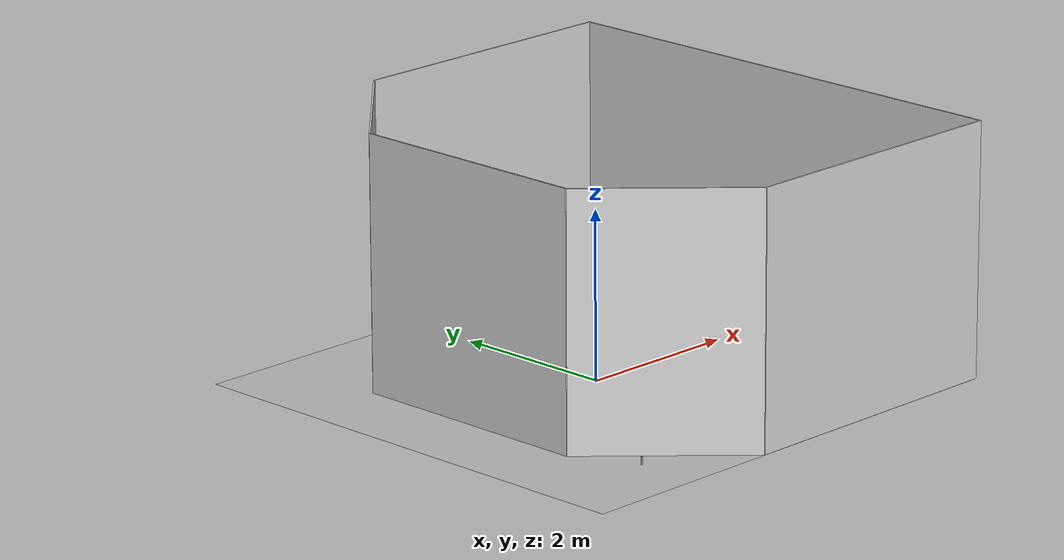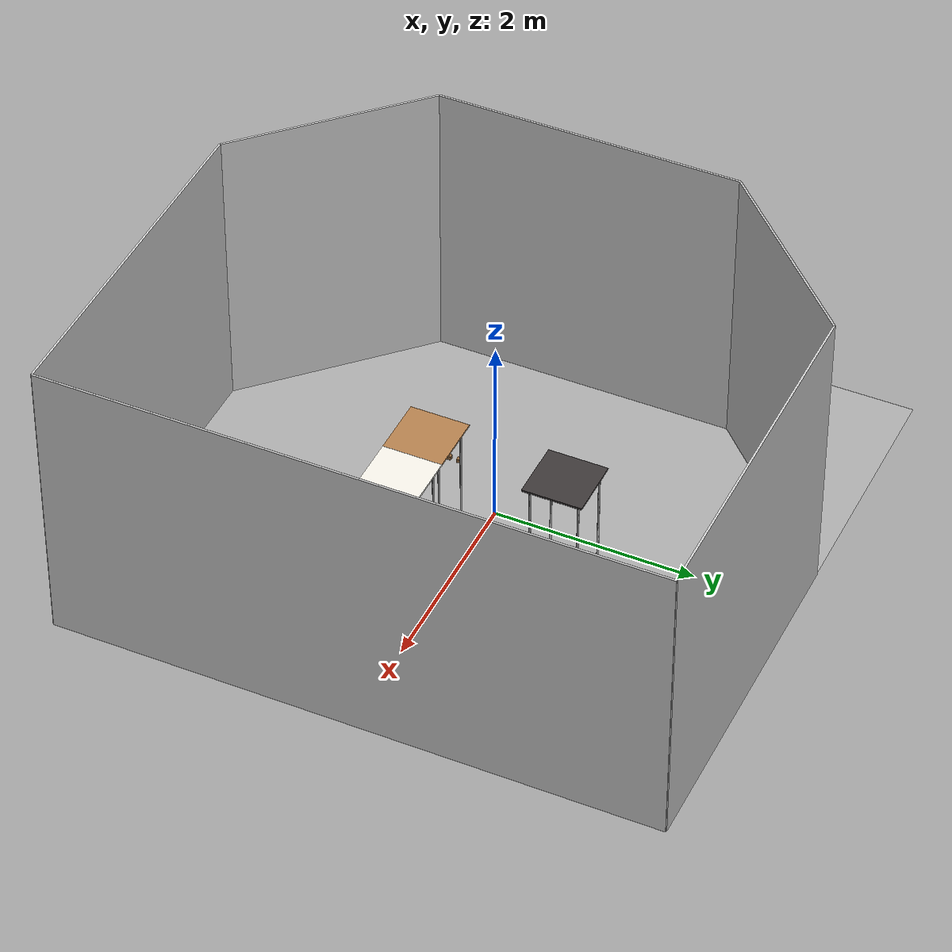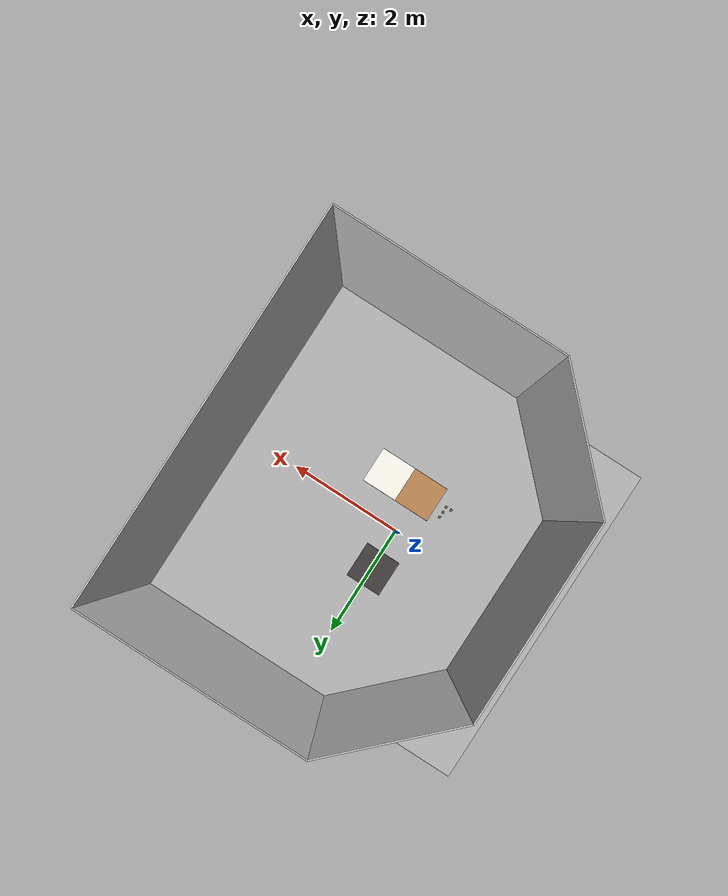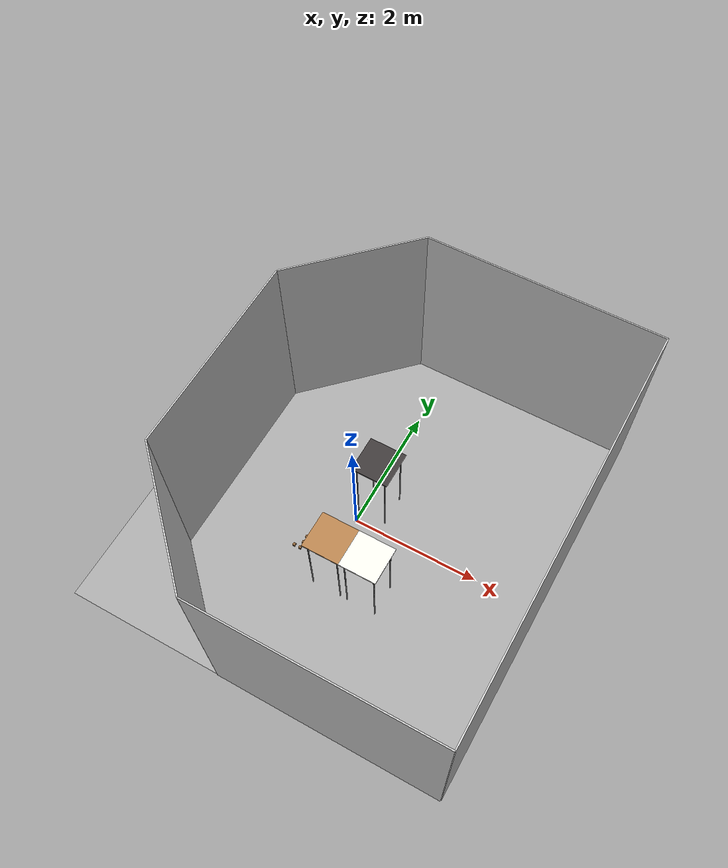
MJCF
<mujoco model="empty_arena">
  <!-- Asset definitions: Textures and materials used in the simulation -->
  <compiler angle="radian"/>

  <visual>
    <global offwidth="1280" offheight="720"/>
  </visual>

  <asset>
    <texture type="skybox" builtin="gradient" rgb1="0.9 0.9 1" rgb2="0.2 0.3 0.4" width="256" height="1536"/>
    <texture type="2d" name="texplane" file="textures/light-gray-floor-tile.png"/>
    <texture type="2d" name="tex-light-gray-plaster" file="textures/light-gray-plaster.png"/>
    <texture type="2d" name="tex-light-wood" file="textures/light-wood.png"/>
    <texture type="2d" name="wood" file="wood.png"/>
    <material name="floorplane" texture="texplane" texuniform="true" texrepeat="2 2" specular="0" shininess="0" reflectance="0.01"/>
    <material name="walls_mat" texture="tex-light-gray-plaster" texuniform="true" texrepeat="3 3" specular="0.1" shininess="0.1"/>
    <material name="light-wood" texture="tex-light-wood" texuniform="true" texrepeat="15 15" reflectance="0.7"/>
    <material name="wood_material" texture="wood" texuniform="true" texrepeat="50 50" rgba="0.8 0.8 0.8 1"/>
  </asset>

  <worldbody>
    <geom name="floor" size="3 3 0.125" type="plane" group="1" material="floorplane"/>
    <geom name="wall_leftcorner_visual" size="1.06 1.5 0.01" pos="-1.25 2.25 1.5" quat="0.653281 0.653281 0.270598 0.270598" type="box" contype="0" conaffinity="0" group="1" material="walls_mat"/>
    <geom name="wall_rightcorner_visual" size="1.06 1.5 0.01" pos="-1.25 -2.25 1.5" quat="0.653281 0.653281 -0.270598 -0.270598" type="box" contype="0" conaffinity="0" group="1" material="walls_mat"/>
    <geom name="wall_left_visual" size="1.75 1.5 0.01" pos="1.25 3 1.5" quat="0.707107 0.707107 0 0" type="box" contype="0" conaffinity="0" group="1" material="walls_mat"/>
    <geom name="wall_right_visual" size="1.75 1.5 0.01" pos="1.25 -3 1.5" quat="0.707107 -0.707107 0 0" type="box" contype="0" conaffinity="0" group="1" material="walls_mat"/>
    <geom name="wall_rear_visual" size="1.5 1.5 0.01" pos="-2 0 1.5" quat="0.5 0.5 0.5 0.5" type="box" contype="0" conaffinity="0" group="1" material="walls_mat"/>
    <geom name="wall_front_visual" size="3 1.5 0.01" pos="3 0 1.5" quat="0.5 0.5 -0.5 -0.5" type="box" contype="0" conaffinity="0" group="1" material="walls_mat"/>
    <camera name="top-right" pos="2.182 1.724 2.59" quat="0.357963 0.171688 0.396916 0.827553"/>
    <camera name="leftangleview" pos="2.182 -1.724 2.59" quat="0.827553 0.396916 0.171688 0.357963"/>
    <camera name="frontview" pos="2.5 0 1.45" quat="0.560842 0.430646 0.430646 0.560842"/>
    <camera name="birdview" pos="-0.2 0 3" quat="0.707107 0 0 0.707107"/>
    <camera name="leftsideview" pos="0.151 -2.941 0.9" quat="0.707107 0.707107 0 0"/>
    <camera name="rightsideview" pos="0.151 2.941 0.9" quat="0 0 0.707107 0.707107"/>
    <camera name="robot-cam" pos="1.3 -1.5 1.1" quat="0.999916 0.00872613 -8.37674e-05 0.0095988"/>
    <light pos="1 1 1.5" dir="-0.19245 -0.19245 -0.96225" directional="true" castshadow="false"/>
    <body name="table_wood" pos="0 -0.7 0">
      <geom name="table_wood_top" size="0.3 0.3 0.01" pos="0 0 0.7" type="box" material="light-wood"/>
      <geom name="table_wood_leg_1" size="0.01 0.7" pos="0.24 -0.24 0" type="cylinder"/>
      <geom name="table_wood_leg_2" size="0.01 0.7" pos="0.24 0.24 0" type="cylinder"/>
      <geom name="table_wood_leg_3" size="0.01 0.7" pos="-0.24 -0.24 0" type="cylinder"/>
      <geom name="table_wood_leg_4" size="0.01 0.7" pos="-0.24 0.24 0" type="cylinder"/>
    </body>
    <body name="table_black" pos="0 0.7 0">
      <geom name="table_black_top" size="0.3 0.3 0.01" pos="0 0 0.7" type="box" rgba="0.235294 0.215686 0.215686 1"/>
      <geom name="table_black_leg_1" size="0.01 0.7" pos="0.24 -0.24 0" type="cylinder"/>
      <geom name="table_black_leg_2" size="0.01 0.7" pos="0.24 0.24 0" type="cylinder"/>
      <geom name="table_black_leg_3" size="0.01 0.7" pos="-0.24 -0.24 0" type="cylinder"/>
      <geom name="table_black_leg_4" size="0.01 0.7" pos="-0.24 0.24 0" type="cylinder"/>
    </body>
    <body name="tale_white" pos="0.6 -0.7 0">
      <geom name="table_white_top" size="0.3 0.3 0.01" pos="0 0 0.7" type="box" rgba="0.95 0.94 0.9 1"/>
      <geom name="table_white_leg_1" size="0.01 0.7" pos="0.24 -0.24 0" type="cylinder"/>
      <geom name="table_white_leg_2" size="0.01 0.7" pos="0.24 0.24 0" type="cylinder"/>
      <geom name="table_white_leg_3" size="0.01 0.7" pos="-0.24 -0.24 0" type="cylinder"/>
      <geom name="table_white_leg_4" size="0.01 0.7" pos="-0.24 0.24 0" type="cylinder"/>
    </body>
    <body name="dish0" pos="-0.5 -0.8 0.025" quat="0 0 1 0">
      <joint name="dish0_fj" type="free" limited="false" actuatorfrclimited="false"/>
      <geom size="0.02 0.02 0.02" type="box" material="wood_material"/>
    </body>
    <body name="dish1" pos="-0.5 -0.7 0.025" quat="0 0 1 0">
      <joint name="dish1_fj" type="free" limited="false" actuatorfrclimited="false"/>
      <geom size="0.02 0.02 0.02" type="box" material="wood_material"/>
    </body>
    <body name="dish2" pos="-0.5 -0.6 0.025" quat="0 0 1 0">
      <joint name="dish2_fj" type="free" limited="false" actuatorfrclimited="false"/>
      <geom size="0.02 0.02 0.02" type="box" material="wood_material"/>
    </body>
    <body name="dish3" pos="-0.6 -0.8 0.025" quat="0 0 1 0">
      <joint name="dish3_fj" type="free" limited="false" actuatorfrclimited="false"/>
      <geom size="0.02 0.02 0.02" type="box" material="wood_material"/>
    </body>
  </worldbody>
</mujoco>
